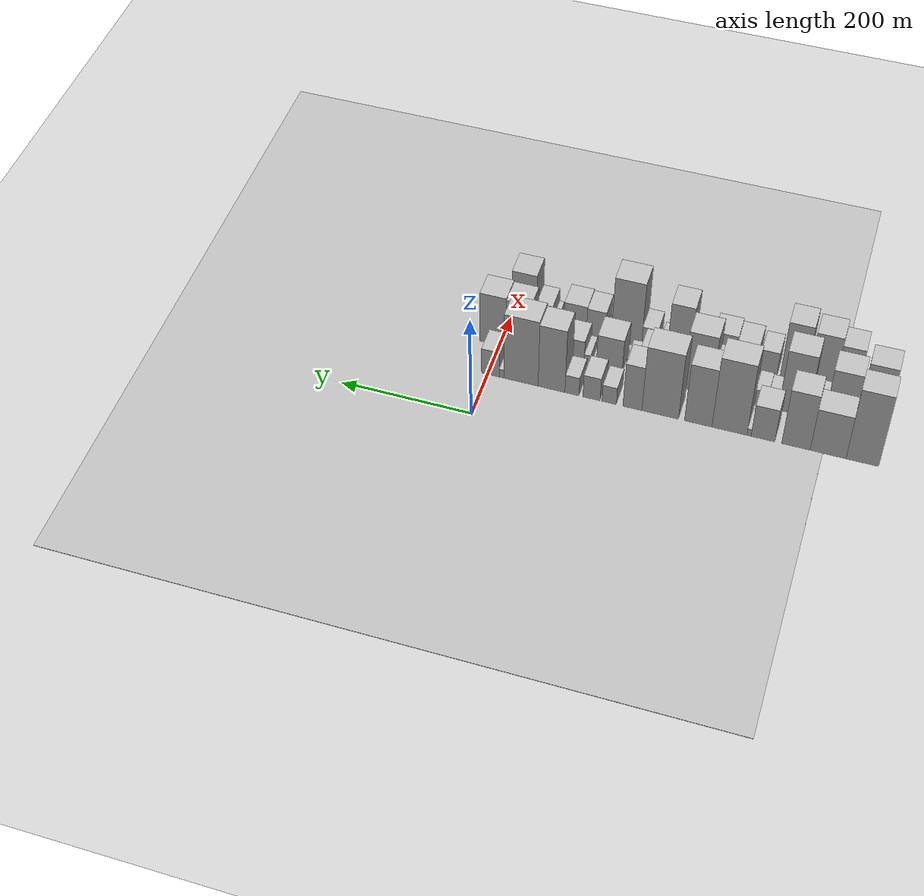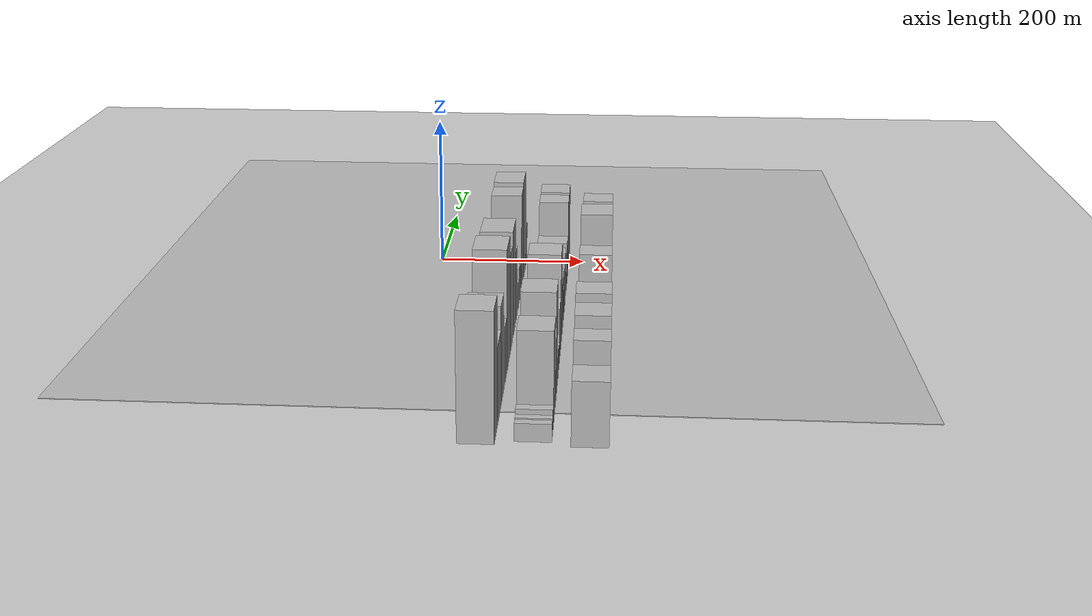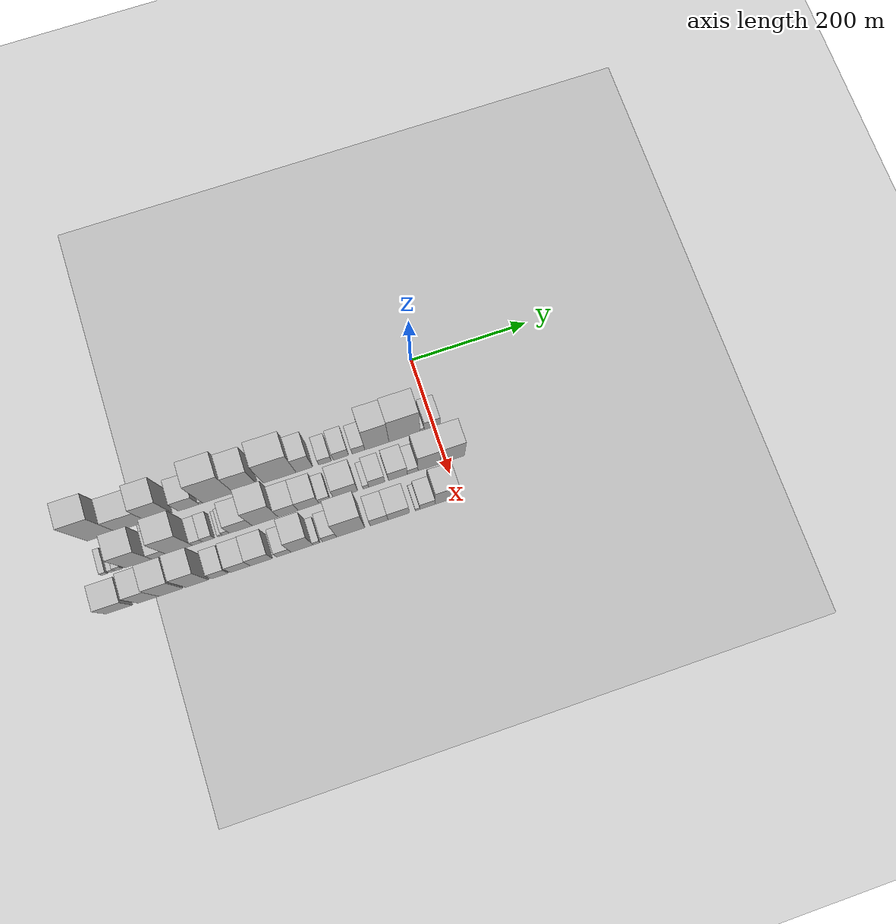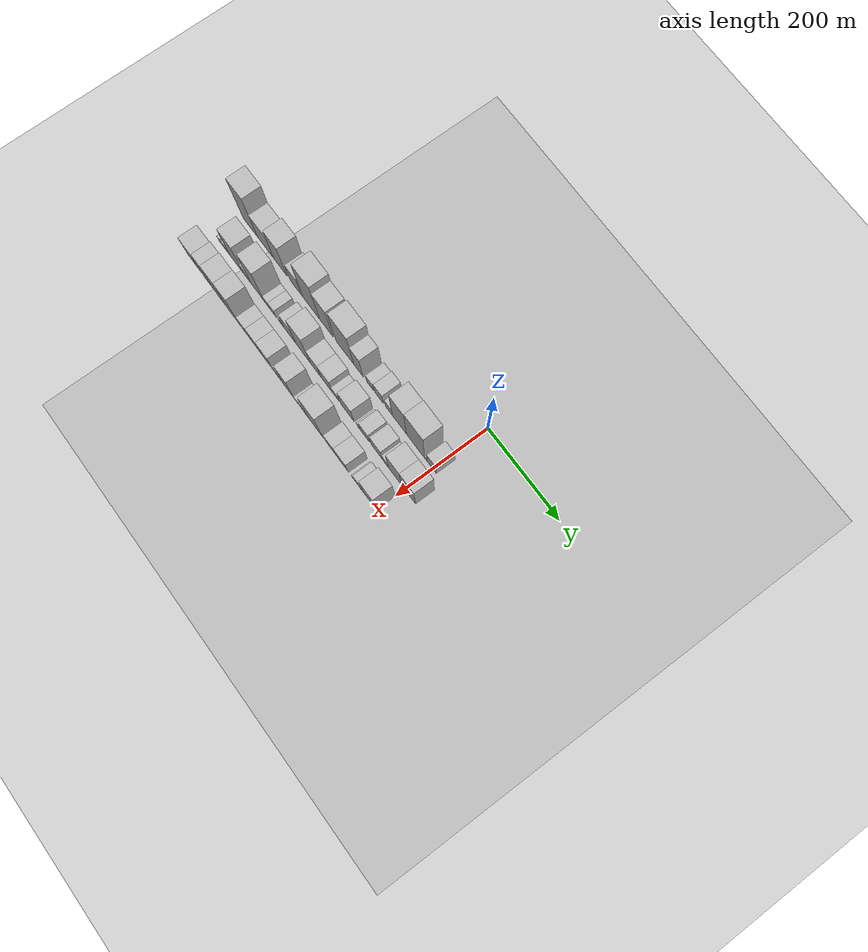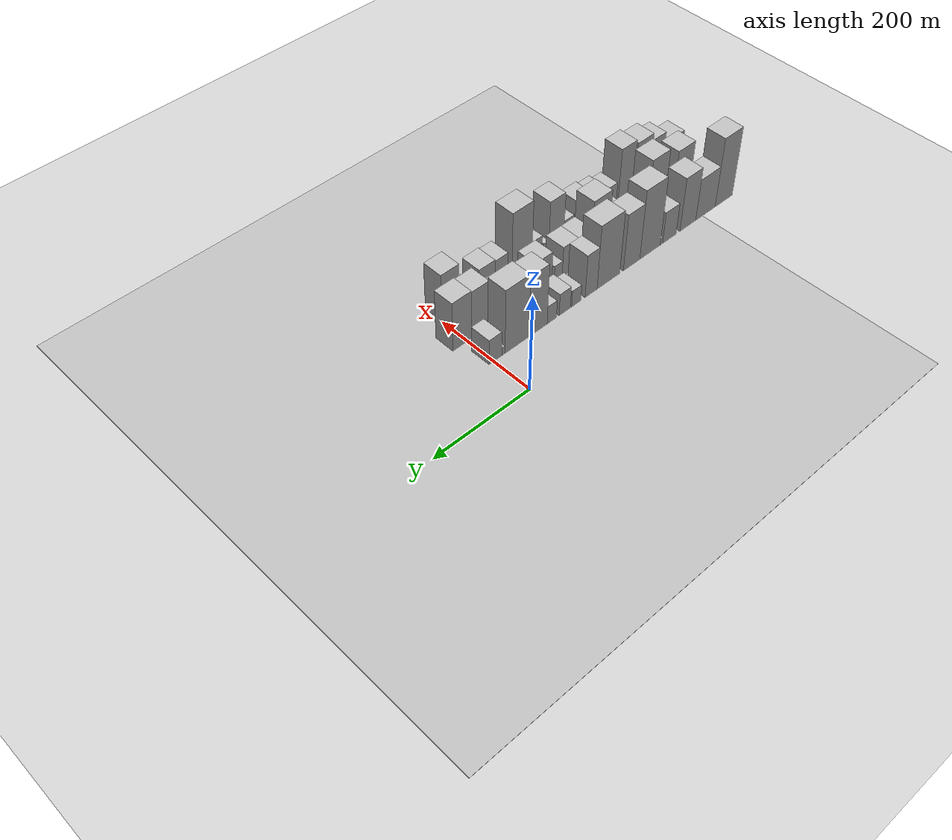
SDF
<sdf version="1.6">
 <world name="default">
  <include><name>ground_plane_1</name><uri>model://HANNAS_ground_plane</uri></include>
  <include>
   <name>ground_plane_2</name>
   <uri>model://HANNAS_ground_plane</uri>
   <pose>100 0 0  0 0 0</pose>
  </include>
  <model name="building_1">
   <static>1</static>
   <pose>100.0000 -556.6057 0 0.000000 0.000000 0.000000</pose>
   <link name="link">
    <pose>0 0 75.00 0 0 0</pose>
    <collision name="collision"><geometry><box><size>40.0000 46.7887 150.0000</size></box></geometry></collision>
    <visual name="visual">
     <cast_shadows>0</cast_shadows>
     <geometry><box><size>40.0000 46.7887 150.0000</size></box></geometry>
     <material>
      <script>
       <uri>model://HANNAS_wall/materials/scripts</uri>
       <uri>model://HANNAS_wall/materials/textures</uri>
       <name>vrc/HANNAS_wall</name>
      </script>
     </material>
    </visual>
   </link>
  </model>
  <model name="building_2">
   <static>1</static>
   <pose>100.0000 -507.5364 0 0.000000 0.000000 0.000000</pose>
   <link name="link">
    <pose>0 0 45.00 0 0 0</pose>
    <collision name="collision"><geometry><box><size>40.0000 51.3499 90.0000</size></box></geometry></collision>
    <visual name="visual">
     <cast_shadows>0</cast_shadows>
     <geometry><box><size>40.0000 51.3499 90.0000</size></box></geometry>
     <material>
      <script>
       <uri>model://HANNAS_wall/materials/scripts</uri>
       <uri>model://HANNAS_wall/materials/textures</uri>
       <name>vrc/HANNAS_wall</name>
      </script>
     </material>
    </visual>
   </link>
  </model>
  <model name="building_3">
   <static>1</static>
   <pose>100.0000 -461.2235 0 0.000000 0.000000 0.000000</pose>
   <link name="link">
    <pose>0 0 58.50 0 0 0</pose>
    <collision name="collision"><geometry><box><size>40.0000 41.2757 117.0000</size></box></geometry></collision>
    <visual name="visual">
     <cast_shadows>0</cast_shadows>
     <geometry><box><size>40.0000 41.2757 117.0000</size></box></geometry>
     <material>
      <script>
       <uri>model://HANNAS_wall/materials/scripts</uri>
       <uri>model://HANNAS_wall/materials/textures</uri>
       <name>vrc/HANNAS_wall</name>
      </script>
     </material>
    </visual>
   </link>
  </model>
  <model name="building_4">
   <static>1</static>
   <pose>100.0000 -413.2775 0 0.000000 0.000000 0.000000</pose>
   <link name="link">
    <pose>0 0 34.50 0 0 0</pose>
    <collision name="collision"><geometry><box><size>40.0000 34.6164 69.0000</size></box></geometry></collision>
    <visual name="visual">
     <cast_shadows>0</cast_shadows>
     <geometry><box><size>40.0000 34.6164 69.0000</size></box></geometry>
     <material>
      <script>
       <uri>model://HANNAS_wall/materials/scripts</uri>
       <uri>model://HANNAS_wall/materials/textures</uri>
       <name>vrc/HANNAS_wall</name>
      </script>
     </material>
    </visual>
   </link>
  </model>
  <model name="building_5">
   <static>1</static>
   <pose>100.0000 -392.9326 0 0.000000 0.000000 0.000000</pose>
   <link name="link">
    <pose>0 0 7.50 0 0 0</pose>
    <collision name="collision"><geometry><box><size>40.0000 6.0733 15.0000</size></box></geometry></collision>
    <visual name="visual">
     <cast_shadows>0</cast_shadows>
     <geometry><box><size>40.0000 6.0733 15.0000</size></box></geometry>
     <material>
      <script>
       <uri>model://HANNAS_wall/materials/scripts</uri>
       <uri>model://HANNAS_wall/materials/textures</uri>
       <name>vrc/HANNAS_wall</name>
      </script>
     </material>
    </visual>
   </link>
  </model>
  <model name="building_6">
   <static>1</static>
   <pose>100.0000 -364.1682 0 0.000000 0.000000 0.000000</pose>
   <link name="link">
    <pose>0 0 75.00 0 0 0</pose>
    <collision name="collision"><geometry><box><size>40.0000 51.4556 150.0000</size></box></geometry></collision>
    <visual name="visual">
     <cast_shadows>0</cast_shadows>
     <geometry><box><size>40.0000 51.4556 150.0000</size></box></geometry>
     <material>
      <script>
       <uri>model://HANNAS_wall/materials/scripts</uri>
       <uri>model://HANNAS_wall/materials/textures</uri>
       <name>vrc/HANNAS_wall</name>
      </script>
     </material>
    </visual>
   </link>
  </model>
  <model name="building_7">
   <static>1</static>
   <pose>100.0000 -318.2402 0 0.000000 0.000000 0.000000</pose>
   <link name="link">
    <pose>0 0 61.50 0 0 0</pose>
    <collision name="collision"><geometry><box><size>40.0000 40.4003 123.0000</size></box></geometry></collision>
    <visual name="visual">
     <cast_shadows>0</cast_shadows>
     <geometry><box><size>40.0000 40.4003 123.0000</size></box></geometry>
     <material>
      <script>
       <uri>model://HANNAS_wall/materials/scripts</uri>
       <uri>model://HANNAS_wall/materials/textures</uri>
       <name>vrc/HANNAS_wall</name>
      </script>
     </material>
    </visual>
   </link>
  </model>
  <model name="building_8">
   <static>1</static>
   <pose>100.0000 -261.7073 0 0.000000 0.000000 0.000000</pose>
   <link name="link">
    <pose>0 0 69.00 0 0 0</pose>
    <collision name="collision"><geometry><box><size>40.0000 54.6654 138.0000</size></box></geometry></collision>
    <visual name="visual">
     <cast_shadows>0</cast_shadows>
     <geometry><box><size>40.0000 54.6654 138.0000</size></box></geometry>
     <material>
      <script>
       <uri>model://HANNAS_wall/materials/scripts</uri>
       <uri>model://HANNAS_wall/materials/textures</uri>
       <name>vrc/HANNAS_wall</name>
      </script>
     </material>
    </visual>
   </link>
  </model>
  <model name="building_9">
   <static>1</static>
   <pose>100.0000 -220.2208 0 0.000000 0.000000 0.000000</pose>
   <link name="link">
    <pose>0 0 46.50 0 0 0</pose>
    <collision name="collision"><geometry><box><size>40.0000 28.3076 93.0000</size></box></geometry></collision>
    <visual name="visual">
     <cast_shadows>0</cast_shadows>
     <geometry><box><size>40.0000 28.3076 93.0000</size></box></geometry>
     <material>
      <script>
       <uri>model://HANNAS_wall/materials/scripts</uri>
       <uri>model://HANNAS_wall/materials/textures</uri>
       <name>vrc/HANNAS_wall</name>
      </script>
     </material>
    </visual>
   </link>
  </model>
  <model name="building_10">
   <static>1</static>
   <pose>100.0000 -185.3479 0 0.000000 0.000000 0.000000</pose>
   <link name="link">
    <pose>0 0 18.00 0 0 0</pose>
    <collision name="collision"><geometry><box><size>40.0000 21.4381 36.0000</size></box></geometry></collision>
    <visual name="visual">
     <cast_shadows>0</cast_shadows>
     <geometry><box><size>40.0000 21.4381 36.0000</size></box></geometry>
     <material>
      <script>
       <uri>model://HANNAS_wall/materials/scripts</uri>
       <uri>model://HANNAS_wall/materials/textures</uri>
       <name>vrc/HANNAS_wall</name>
      </script>
     </material>
    </visual>
   </link>
  </model>
  <model name="building_11">
   <static>1</static>
   <pose>100.0000 -158.6383 0 0.000000 0.000000 0.000000</pose>
   <link name="link">
    <pose>0 0 24.00 0 0 0</pose>
    <collision name="collision"><geometry><box><size>40.0000 25.9812 48.0000</size></box></geometry></collision>
    <visual name="visual">
     <cast_shadows>0</cast_shadows>
     <geometry><box><size>40.0000 25.9812 48.0000</size></box></geometry>
     <material>
      <script>
       <uri>model://HANNAS_wall/materials/scripts</uri>
       <uri>model://HANNAS_wall/materials/textures</uri>
       <name>vrc/HANNAS_wall</name>
      </script>
     </material>
    </visual>
   </link>
  </model>
  <model name="building_12">
   <static>1</static>
   <pose>100.0000 -128.9441 0 0.000000 0.000000 0.000000</pose>
   <link name="link">
    <pose>0 0 19.50 0 0 0</pose>
    <collision name="collision"><geometry><box><size>40.0000 21.4073 39.0000</size></box></geometry></collision>
    <visual name="visual">
     <cast_shadows>0</cast_shadows>
     <geometry><box><size>40.0000 21.4073 39.0000</size></box></geometry>
     <material>
      <script>
       <uri>model://HANNAS_wall/materials/scripts</uri>
       <uri>model://HANNAS_wall/materials/textures</uri>
       <name>vrc/HANNAS_wall</name>
      </script>
     </material>
    </visual>
   </link>
  </model>
  <model name="building_13">
   <static>1</static>
   <pose>100.0000 -97.7758 0 0.000000 0.000000 0.000000</pose>
   <link name="link">
    <pose>0 0 66.00 0 0 0</pose>
    <collision name="collision"><geometry><box><size>40.0000 40.9294 132.0000</size></box></geometry></collision>
    <visual name="visual">
     <cast_shadows>0</cast_shadows>
     <geometry><box><size>40.0000 40.9294 132.0000</size></box></geometry>
     <material>
      <script>
       <uri>model://HANNAS_wall/materials/scripts</uri>
       <uri>model://HANNAS_wall/materials/textures</uri>
       <name>vrc/HANNAS_wall</name>
      </script>
     </material>
    </visual>
   </link>
  </model>
  <model name="building_14">
   <static>1</static>
   <pose>100.0000 -50.9535 0 0.000000 0.000000 0.000000</pose>
   <link name="link">
    <pose>0 0 69.00 0 0 0</pose>
    <collision name="collision"><geometry><box><size>40.0000 52.7151 138.0000</size></box></geometry></collision>
    <visual name="visual">
     <cast_shadows>0</cast_shadows>
     <geometry><box><size>40.0000 52.7151 138.0000</size></box></geometry>
     <material>
      <script>
       <uri>model://HANNAS_wall/materials/scripts</uri>
       <uri>model://HANNAS_wall/materials/textures</uri>
       <name>vrc/HANNAS_wall</name>
      </script>
     </material>
    </visual>
   </link>
  </model>
  <model name="building_15">
   <static>1</static>
   <pose>100.0000 -20.9547 0 0.000000 0.000000 0.000000</pose>
   <link name="link">
    <pose>0 0 9.00 0 0 0</pose>
    <collision name="collision"><geometry><box><size>40.0000 7.2826 18.0000</size></box></geometry></collision>
    <visual name="visual">
     <cast_shadows>0</cast_shadows>
     <geometry><box><size>40.0000 7.2826 18.0000</size></box></geometry>
     <material>
      <script>
       <uri>model://HANNAS_wall/materials/scripts</uri>
       <uri>model://HANNAS_wall/materials/textures</uri>
       <name>vrc/HANNAS_wall</name>
      </script>
     </material>
    </visual>
   </link>
  </model>
  <model name="building_16">
   <static>1</static>
   <pose>100.0000 -3.7661 0 0.000000 0.000000 0.000000</pose>
   <link name="link">
    <pose>0 0 27.00 0 0 0</pose>
    <collision name="collision"><geometry><box><size>40.0000 27.0945 54.0000</size></box></geometry></collision>
    <visual name="visual">
     <cast_shadows>0</cast_shadows>
     <geometry><box><size>40.0000 27.0945 54.0000</size></box></geometry>
     <material>
      <script>
       <uri>model://HANNAS_wall/materials/scripts</uri>
       <uri>model://HANNAS_wall/materials/textures</uri>
       <name>vrc/HANNAS_wall</name>
      </script>
     </material>
    </visual>
   </link>
  </model>
  <model name="building_34">
   <static>1</static>
   <pose>160.0000 -565.9873 0 0.000000 0.000000 0.000000</pose>
   <link name="link">
    <pose>0 0 10.50 0 0 0</pose>
    <collision name="collision"><geometry><box><size>40.0000 10.0253 21.0000</size></box></geometry></collision>
    <visual name="visual">
     <cast_shadows>0</cast_shadows>
     <geometry><box><size>40.0000 10.0253 21.0000</size></box></geometry>
     <material>
      <script>
       <uri>model://HANNAS_wall/materials/scripts</uri>
       <uri>model://HANNAS_wall/materials/textures</uri>
       <name>vrc/HANNAS_wall</name>
      </script>
     </material>
    </visual>
   </link>
  </model>
  <model name="building_35">
   <static>1</static>
   <pose>160.0000 -553.3442 0 0.000000 0.000000 0.000000</pose>
   <link name="link">
    <pose>0 0 10.50 0 0 0</pose>
    <collision name="collision"><geometry><box><size>40.0000 9.2609 21.0000</size></box></geometry></collision>
    <visual name="visual">
     <cast_shadows>0</cast_shadows>
     <geometry><box><size>40.0000 9.2609 21.0000</size></box></geometry>
     <material>
      <script>
       <uri>model://HANNAS_wall/materials/scripts</uri>
       <uri>model://HANNAS_wall/materials/textures</uri>
       <name>vrc/HANNAS_wall</name>
      </script>
     </material>
    </visual>
   </link>
  </model>
  <model name="building_36">
   <static>1</static>
   <pose>160.0000 -542.7825 0 0.000000 0.000000 0.000000</pose>
   <link name="link">
    <pose>0 0 13.50 0 0 0</pose>
    <collision name="collision"><geometry><box><size>40.0000 11.8624 27.0000</size></box></geometry></collision>
    <visual name="visual">
     <cast_shadows>0</cast_shadows>
     <geometry><box><size>40.0000 11.8624 27.0000</size></box></geometry>
     <material>
      <script>
       <uri>model://HANNAS_wall/materials/scripts</uri>
       <uri>model://HANNAS_wall/materials/textures</uri>
       <name>vrc/HANNAS_wall</name>
      </script>
     </material>
    </visual>
   </link>
  </model>
  <model name="building_37">
   <static>1</static>
   <pose>160.0000 -512.3643 0 0.000000 0.000000 0.000000</pose>
   <link name="link">
    <pose>0 0 55.50 0 0 0</pose>
    <collision name="collision"><geometry><box><size>40.0000 42.9741 111.0000</size></box></geometry></collision>
    <visual name="visual">
     <cast_shadows>0</cast_shadows>
     <geometry><box><size>40.0000 42.9741 111.0000</size></box></geometry>
     <material>
      <script>
       <uri>model://HANNAS_wall/materials/scripts</uri>
       <uri>model://HANNAS_wall/materials/textures</uri>
       <name>vrc/HANNAS_wall</name>
      </script>
     </material>
    </visual>
   </link>
  </model>
  <model name="building_38">
   <static>1</static>
   <pose>160.0000 -478.8510 0 0.000000 0.000000 0.000000</pose>
   <link name="link">
    <pose>0 0 21.00 0 0 0</pose>
    <collision name="collision"><geometry><box><size>40.0000 24.0523 42.0000</size></box></geometry></collision>
    <visual name="visual">
     <cast_shadows>0</cast_shadows>
     <geometry><box><size>40.0000 24.0523 42.0000</size></box></geometry>
     <material>
      <script>
       <uri>model://HANNAS_wall/materials/scripts</uri>
       <uri>model://HANNAS_wall/materials/textures</uri>
       <name>vrc/HANNAS_wall</name>
      </script>
     </material>
    </visual>
   </link>
  </model>
  <model name="building_39">
   <static>1</static>
   <pose>160.0000 -445.1828 0 0.000000 0.000000 0.000000</pose>
   <link name="link">
    <pose>0 0 64.50 0 0 0</pose>
    <collision name="collision"><geometry><box><size>40.0000 43.2841 129.0000</size></box></geometry></collision>
    <visual name="visual">
     <cast_shadows>0</cast_shadows>
     <geometry><box><size>40.0000 43.2841 129.0000</size></box></geometry>
     <material>
      <script>
       <uri>model://HANNAS_wall/materials/scripts</uri>
       <uri>model://HANNAS_wall/materials/textures</uri>
       <name>vrc/HANNAS_wall</name>
      </script>
     </material>
    </visual>
   </link>
  </model>
  <model name="building_40">
   <static>1</static>
   <pose>160.0000 -415.0381 0 0.000000 0.000000 0.000000</pose>
   <link name="link">
    <pose>0 0 15.00 0 0 0</pose>
    <collision name="collision"><geometry><box><size>40.0000 17.0053 30.0000</size></box></geometry></collision>
    <visual name="visual">
     <cast_shadows>0</cast_shadows>
     <geometry><box><size>40.0000 17.0053 30.0000</size></box></geometry>
     <material>
      <script>
       <uri>model://HANNAS_wall/materials/scripts</uri>
       <uri>model://HANNAS_wall/materials/textures</uri>
       <name>vrc/HANNAS_wall</name>
      </script>
     </material>
    </visual>
   </link>
  </model>
  <model name="building_41">
   <static>1</static>
   <pose>160.0000 -396.8979 0 0.000000 0.000000 0.000000</pose>
   <link name="link">
    <pose>0 0 16.50 0 0 0</pose>
    <collision name="collision"><geometry><box><size>40.0000 19.2752 33.0000</size></box></geometry></collision>
    <visual name="visual">
     <cast_shadows>0</cast_shadows>
     <geometry><box><size>40.0000 19.2752 33.0000</size></box></geometry>
     <material>
      <script>
       <uri>model://HANNAS_wall/materials/scripts</uri>
       <uri>model://HANNAS_wall/materials/textures</uri>
       <name>vrc/HANNAS_wall</name>
      </script>
     </material>
    </visual>
   </link>
  </model>
  <model name="building_42">
   <static>1</static>
   <pose>160.0000 -377.6748 0 0.000000 0.000000 0.000000</pose>
   <link name="link">
    <pose>0 0 7.50 0 0 0</pose>
    <collision name="collision"><geometry><box><size>40.0000 7.1710 15.0000</size></box></geometry></collision>
    <visual name="visual">
     <cast_shadows>0</cast_shadows>
     <geometry><box><size>40.0000 7.1710 15.0000</size></box></geometry>
     <material>
      <script>
       <uri>model://HANNAS_wall/materials/scripts</uri>
       <uri>model://HANNAS_wall/materials/textures</uri>
       <name>vrc/HANNAS_wall</name>
      </script>
     </material>
    </visual>
   </link>
  </model>
  <model name="building_43">
   <static>1</static>
   <pose>160.0000 -368.3267 0 0.000000 0.000000 0.000000</pose>
   <link name="link">
    <pose>0 0 13.50 0 0 0</pose>
    <collision name="collision"><geometry><box><size>40.0000 11.5252 27.0000</size></box></geometry></collision>
    <visual name="visual">
     <cast_shadows>0</cast_shadows>
     <geometry><box><size>40.0000 11.5252 27.0000</size></box></geometry>
     <material>
      <script>
       <uri>model://HANNAS_wall/materials/scripts</uri>
       <uri>model://HANNAS_wall/materials/textures</uri>
       <name>vrc/HANNAS_wall</name>
      </script>
     </material>
    </visual>
   </link>
  </model>
  <model name="building_44">
   <static>1</static>
   <pose>160.0000 -343.9430 0 0.000000 0.000000 0.000000</pose>
   <link name="link">
    <pose>0 0 34.50 0 0 0</pose>
    <collision name="collision"><geometry><box><size>40.0000 37.2422 69.0000</size></box></geometry></collision>
    <visual name="visual">
     <cast_shadows>0</cast_shadows>
     <geometry><box><size>40.0000 37.2422 69.0000</size></box></geometry>
     <material>
      <script>
       <uri>model://HANNAS_wall/materials/scripts</uri>
       <uri>model://HANNAS_wall/materials/textures</uri>
       <name>vrc/HANNAS_wall</name>
      </script>
     </material>
    </visual>
   </link>
  </model>
  <model name="building_45">
   <static>1</static>
   <pose>160.0000 -303.7609 0 0.000000 0.000000 0.000000</pose>
   <link name="link">
    <pose>0 0 61.50 0 0 0</pose>
    <collision name="collision"><geometry><box><size>40.0000 43.1222 123.0000</size></box></geometry></collision>
    <visual name="visual">
     <cast_shadows>0</cast_shadows>
     <geometry><box><size>40.0000 43.1222 123.0000</size></box></geometry>
     <material>
      <script>
       <uri>model://HANNAS_wall/materials/scripts</uri>
       <uri>model://HANNAS_wall/materials/textures</uri>
       <name>vrc/HANNAS_wall</name>
      </script>
     </material>
    </visual>
   </link>
  </model>
  <model name="building_46">
   <static>1</static>
   <pose>160.0000 -265.6744 0 0.000000 0.000000 0.000000</pose>
   <link name="link">
    <pose>0 0 33.00 0 0 0</pose>
    <collision name="collision"><geometry><box><size>40.0000 33.0507 66.0000</size></box></geometry></collision>
    <visual name="visual">
     <cast_shadows>0</cast_shadows>
     <geometry><box><size>40.0000 33.0507 66.0000</size></box></geometry>
     <material>
      <script>
       <uri>model://HANNAS_wall/materials/scripts</uri>
       <uri>model://HANNAS_wall/materials/textures</uri>
       <name>vrc/HANNAS_wall</name>
      </script>
     </material>
    </visual>
   </link>
  </model>
  <model name="building_47">
   <static>1</static>
   <pose>160.0000 -231.5568 0 0.000000 0.000000 0.000000</pose>
   <link name="link">
    <pose>0 0 33.00 0 0 0</pose>
    <collision name="collision"><geometry><box><size>40.0000 35.1845 66.0000</size></box></geometry></collision>
    <visual name="visual">
     <cast_shadows>0</cast_shadows>
     <geometry><box><size>40.0000 35.1845 66.0000</size></box></geometry>
     <material>
      <script>
       <uri>model://HANNAS_wall/materials/scripts</uri>
       <uri>model://HANNAS_wall/materials/textures</uri>
       <name>vrc/HANNAS_wall</name>
      </script>
     </material>
    </visual>
   </link>
  </model>
  <model name="building_48">
   <static>1</static>
   <pose>160.0000 -204.5643 0 0.000000 0.000000 0.000000</pose>
   <link name="link">
    <pose>0 0 18.00 0 0 0</pose>
    <collision name="collision"><geometry><box><size>40.0000 18.8004 36.0000</size></box></geometry></collision>
    <visual name="visual">
     <cast_shadows>0</cast_shadows>
     <geometry><box><size>40.0000 18.8004 36.0000</size></box></geometry>
     <material>
      <script>
       <uri>model://HANNAS_wall/materials/scripts</uri>
       <uri>model://HANNAS_wall/materials/textures</uri>
       <name>vrc/HANNAS_wall</name>
      </script>
     </material>
    </visual>
   </link>
  </model>
  <model name="building_49">
   <static>1</static>
   <pose>160.0000 -169.2522 0 0.000000 0.000000 0.000000</pose>
   <link name="link">
    <pose>0 0 36.00 0 0 0</pose>
    <collision name="collision"><geometry><box><size>40.0000 39.8238 72.0000</size></box></geometry></collision>
    <visual name="visual">
     <cast_shadows>0</cast_shadows>
     <geometry><box><size>40.0000 39.8238 72.0000</size></box></geometry>
     <material>
      <script>
       <uri>model://HANNAS_wall/materials/scripts</uri>
       <uri>model://HANNAS_wall/materials/textures</uri>
       <name>vrc/HANNAS_wall</name>
      </script>
     </material>
    </visual>
   </link>
  </model>
  <model name="building_50">
   <static>1</static>
   <pose>160.0000 -135.4877 0 0.000000 0.000000 0.000000</pose>
   <link name="link">
    <pose>0 0 12.00 0 0 0</pose>
    <collision name="collision"><geometry><box><size>40.0000 9.7053 24.0000</size></box></geometry></collision>
    <visual name="visual">
     <cast_shadows>0</cast_shadows>
     <geometry><box><size>40.0000 9.7053 24.0000</size></box></geometry>
     <material>
      <script>
       <uri>model://HANNAS_wall/materials/scripts</uri>
       <uri>model://HANNAS_wall/materials/textures</uri>
       <name>vrc/HANNAS_wall</name>
      </script>
     </material>
    </visual>
   </link>
  </model>
  <model name="building_51">
   <static>1</static>
   <pose>160.0000 -117.0785 0 0.000000 0.000000 0.000000</pose>
   <link name="link">
    <pose>0 0 25.50 0 0 0</pose>
    <collision name="collision"><geometry><box><size>40.0000 27.1130 51.0000</size></box></geometry></collision>
    <visual name="visual">
     <cast_shadows>0</cast_shadows>
     <geometry><box><size>40.0000 27.1130 51.0000</size></box></geometry>
     <material>
      <script>
       <uri>model://HANNAS_wall/materials/scripts</uri>
       <uri>model://HANNAS_wall/materials/textures</uri>
       <name>vrc/HANNAS_wall</name>
      </script>
     </material>
    </visual>
   </link>
  </model>
  <model name="building_52">
   <static>1</static>
   <pose>160.0000 -81.5995 0 0.000000 0.000000 0.000000</pose>
   <link name="link">
    <pose>0 0 30.00 0 0 0</pose>
    <collision name="collision"><geometry><box><size>40.0000 31.8449 60.0000</size></box></geometry></collision>
    <visual name="visual">
     <cast_shadows>0</cast_shadows>
     <geometry><box><size>40.0000 31.8449 60.0000</size></box></geometry>
     <material>
      <script>
       <uri>model://HANNAS_wall/materials/scripts</uri>
       <uri>model://HANNAS_wall/materials/textures</uri>
       <name>vrc/HANNAS_wall</name>
      </script>
     </material>
    </visual>
   </link>
  </model>
  <model name="building_53">
   <static>1</static>
   <pose>160.0000 -56.6211 0 0.000000 0.000000 0.000000</pose>
   <link name="link">
    <pose>0 0 16.50 0 0 0</pose>
    <collision name="collision"><geometry><box><size>40.0000 18.1120 33.0000</size></box></geometry></collision>
    <visual name="visual">
     <cast_shadows>0</cast_shadows>
     <geometry><box><size>40.0000 18.1120 33.0000</size></box></geometry>
     <material>
      <script>
       <uri>model://HANNAS_wall/materials/scripts</uri>
       <uri>model://HANNAS_wall/materials/textures</uri>
       <name>vrc/HANNAS_wall</name>
      </script>
     </material>
    </visual>
   </link>
  </model>
  <model name="building_54">
   <static>1</static>
   <pose>160.0000 -28.6241 0 0.000000 0.000000 0.000000</pose>
   <link name="link">
    <pose>0 0 51.00 0 0 0</pose>
    <collision name="collision"><geometry><box><size>40.0000 37.8820 102.0000</size></box></geometry></collision>
    <visual name="visual">
     <cast_shadows>0</cast_shadows>
     <geometry><box><size>40.0000 37.8820 102.0000</size></box></geometry>
     <material>
      <script>
       <uri>model://HANNAS_wall/materials/scripts</uri>
       <uri>model://HANNAS_wall/materials/textures</uri>
       <name>vrc/HANNAS_wall</name>
      </script>
     </material>
    </visual>
   </link>
  </model>
  <model name="building_55">
   <static>1</static>
   <pose>160.0000 10.7575 0 0.000000 0.000000 0.000000</pose>
   <link name="link">
    <pose>0 0 52.50 0 0 0</pose>
    <collision name="collision"><geometry><box><size>40.0000 40.8811 105.0000</size></box></geometry></collision>
    <visual name="visual">
     <cast_shadows>0</cast_shadows>
     <geometry><box><size>40.0000 40.8811 105.0000</size></box></geometry>
     <material>
      <script>
       <uri>model://HANNAS_wall/materials/scripts</uri>
       <uri>model://HANNAS_wall/materials/textures</uri>
       <name>vrc/HANNAS_wall</name>
      </script>
     </material>
    </visual>
   </link>
  </model>
  <model name="building_73">
   <static>1</static>
   <pose>220.0000 -558.6510 0 0.000000 0.000000 0.000000</pose>
   <link name="link">
    <pose>0 0 37.50 0 0 0</pose>
    <collision name="collision"><geometry><box><size>40.0000 42.6980 75.0000</size></box></geometry></collision>
    <visual name="visual">
     <cast_shadows>0</cast_shadows>
     <geometry><box><size>40.0000 42.6980 75.0000</size></box></geometry>
     <material>
      <script>
       <uri>model://HANNAS_wall/materials/scripts</uri>
       <uri>model://HANNAS_wall/materials/textures</uri>
       <name>vrc/HANNAS_wall</name>
      </script>
     </material>
    </visual>
   </link>
  </model>
  <model name="building_74">
   <static>1</static>
   <pose>220.0000 -511.4858 0 0.000000 0.000000 0.000000</pose>
   <link name="link">
    <pose>0 0 49.50 0 0 0</pose>
    <collision name="collision"><geometry><box><size>40.0000 33.6324 99.0000</size></box></geometry></collision>
    <visual name="visual">
     <cast_shadows>0</cast_shadows>
     <geometry><box><size>40.0000 33.6324 99.0000</size></box></geometry>
     <material>
      <script>
       <uri>model://HANNAS_wall/materials/scripts</uri>
       <uri>model://HANNAS_wall/materials/textures</uri>
       <name>vrc/HANNAS_wall</name>
      </script>
     </material>
    </visual>
   </link>
  </model>
  <model name="building_75">
   <static>1</static>
   <pose>220.0000 -474.9316 0 0.000000 0.000000 0.000000</pose>
   <link name="link">
    <pose>0 0 57.00 0 0 0</pose>
    <collision name="collision"><geometry><box><size>40.0000 39.4760 114.0000</size></box></geometry></collision>
    <visual name="visual">
     <cast_shadows>0</cast_shadows>
     <geometry><box><size>40.0000 39.4760 114.0000</size></box></geometry>
     <material>
      <script>
       <uri>model://HANNAS_wall/materials/scripts</uri>
       <uri>model://HANNAS_wall/materials/textures</uri>
       <name>vrc/HANNAS_wall</name>
      </script>
     </material>
    </visual>
   </link>
  </model>
  <model name="building_76">
   <static>1</static>
   <pose>220.0000 -432.4911 0 0.000000 0.000000 0.000000</pose>
   <link name="link">
    <pose>0 0 61.50 0 0 0</pose>
    <collision name="collision"><geometry><box><size>40.0000 37.4050 123.0000</size></box></geometry></collision>
    <visual name="visual">
     <cast_shadows>0</cast_shadows>
     <geometry><box><size>40.0000 37.4050 123.0000</size></box></geometry>
     <material>
      <script>
       <uri>model://HANNAS_wall/materials/scripts</uri>
       <uri>model://HANNAS_wall/materials/textures</uri>
       <name>vrc/HANNAS_wall</name>
      </script>
     </material>
    </visual>
   </link>
  </model>
  <model name="building_77">
   <static>1</static>
   <pose>220.0000 -395.1412 0 0.000000 0.000000 0.000000</pose>
   <link name="link">
    <pose>0 0 27.00 0 0 0</pose>
    <collision name="collision"><geometry><box><size>40.0000 27.2949 54.0000</size></box></geometry></collision>
    <visual name="visual">
     <cast_shadows>0</cast_shadows>
     <geometry><box><size>40.0000 27.2949 54.0000</size></box></geometry>
     <material>
      <script>
       <uri>model://HANNAS_wall/materials/scripts</uri>
       <uri>model://HANNAS_wall/materials/textures</uri>
       <name>vrc/HANNAS_wall</name>
      </script>
     </material>
    </visual>
   </link>
  </model>
  <model name="building_78">
   <static>1</static>
   <pose>220.0000 -362.0749 0 0.000000 0.000000 0.000000</pose>
   <link name="link">
    <pose>0 0 31.50 0 0 0</pose>
    <collision name="collision"><geometry><box><size>40.0000 32.8376 63.0000</size></box></geometry></collision>
    <visual name="visual">
     <cast_shadows>0</cast_shadows>
     <geometry><box><size>40.0000 32.8376 63.0000</size></box></geometry>
     <material>
      <script>
       <uri>model://HANNAS_wall/materials/scripts</uri>
       <uri>model://HANNAS_wall/materials/textures</uri>
       <name>vrc/HANNAS_wall</name>
      </script>
     </material>
    </visual>
   </link>
  </model>
  <model name="building_79">
   <static>1</static>
   <pose>220.0000 -327.5263 0 0.000000 0.000000 0.000000</pose>
   <link name="link">
    <pose>0 0 34.50 0 0 0</pose>
    <collision name="collision"><geometry><box><size>40.0000 36.2596 69.0000</size></box></geometry></collision>
    <visual name="visual">
     <cast_shadows>0</cast_shadows>
     <geometry><box><size>40.0000 36.2596 69.0000</size></box></geometry>
     <material>
      <script>
       <uri>model://HANNAS_wall/materials/scripts</uri>
       <uri>model://HANNAS_wall/materials/textures</uri>
       <name>vrc/HANNAS_wall</name>
      </script>
     </material>
    </visual>
   </link>
  </model>
  <model name="building_80">
   <static>1</static>
   <pose>220.0000 -290.5452 0 0.000000 0.000000 0.000000</pose>
   <link name="link">
    <pose>0 0 22.50 0 0 0</pose>
    <collision name="collision"><geometry><box><size>40.0000 23.7028 45.0000</size></box></geometry></collision>
    <visual name="visual">
     <cast_shadows>0</cast_shadows>
     <geometry><box><size>40.0000 23.7028 45.0000</size></box></geometry>
     <material>
      <script>
       <uri>model://HANNAS_wall/materials/scripts</uri>
       <uri>model://HANNAS_wall/materials/textures</uri>
       <name>vrc/HANNAS_wall</name>
      </script>
     </material>
    </visual>
   </link>
  </model>
  <model name="building_81">
   <static>1</static>
   <pose>220.0000 -260.6700 0 0.000000 0.000000 0.000000</pose>
   <link name="link">
    <pose>0 0 54.00 0 0 0</pose>
    <collision name="collision"><geometry><box><size>40.0000 36.0476 108.0000</size></box></geometry></collision>
    <visual name="visual">
     <cast_shadows>0</cast_shadows>
     <geometry><box><size>40.0000 36.0476 108.0000</size></box></geometry>
     <material>
      <script>
       <uri>model://HANNAS_wall/materials/scripts</uri>
       <uri>model://HANNAS_wall/materials/textures</uri>
       <name>vrc/HANNAS_wall</name>
      </script>
     </material>
    </visual>
   </link>
  </model>
  <model name="building_82">
   <static>1</static>
   <pose>220.0000 -236.8047 0 0.000000 0.000000 0.000000</pose>
   <link name="link">
    <pose>0 0 12.00 0 0 0</pose>
    <collision name="collision"><geometry><box><size>40.0000 11.6829 24.0000</size></box></geometry></collision>
    <visual name="visual">
     <cast_shadows>0</cast_shadows>
     <geometry><box><size>40.0000 11.6829 24.0000</size></box></geometry>
     <material>
      <script>
       <uri>model://HANNAS_wall/materials/scripts</uri>
       <uri>model://HANNAS_wall/materials/textures</uri>
       <name>vrc/HANNAS_wall</name>
      </script>
     </material>
    </visual>
   </link>
  </model>
  <model name="building_83">
   <static>1</static>
   <pose>220.0000 -215.0980 0 0.000000 0.000000 0.000000</pose>
   <link name="link">
    <pose>0 0 22.50 0 0 0</pose>
    <collision name="collision"><geometry><box><size>40.0000 23.7305 45.0000</size></box></geometry></collision>
    <visual name="visual">
     <cast_shadows>0</cast_shadows>
     <geometry><box><size>40.0000 23.7305 45.0000</size></box></geometry>
     <material>
      <script>
       <uri>model://HANNAS_wall/materials/scripts</uri>
       <uri>model://HANNAS_wall/materials/textures</uri>
       <name>vrc/HANNAS_wall</name>
      </script>
     </material>
    </visual>
   </link>
  </model>
  <model name="building_84">
   <static>1</static>
   <pose>220.0000 -179.7923 0 0.000000 0.000000 0.000000</pose>
   <link name="link">
    <pose>0 0 67.50 0 0 0</pose>
    <collision name="collision"><geometry><box><size>40.0000 46.8808 135.0000</size></box></geometry></collision>
    <visual name="visual">
     <cast_shadows>0</cast_shadows>
     <geometry><box><size>40.0000 46.8808 135.0000</size></box></geometry>
     <material>
      <script>
       <uri>model://HANNAS_wall/materials/scripts</uri>
       <uri>model://HANNAS_wall/materials/textures</uri>
       <name>vrc/HANNAS_wall</name>
      </script>
     </material>
    </visual>
   </link>
  </model>
  <model name="building_85">
   <static>1</static>
   <pose>220.0000 -132.6082 0 0.000000 0.000000 0.000000</pose>
   <link name="link">
    <pose>0 0 28.50 0 0 0</pose>
    <collision name="collision"><geometry><box><size>40.0000 29.4876 57.0000</size></box></geometry></collision>
    <visual name="visual">
     <cast_shadows>0</cast_shadows>
     <geometry><box><size>40.0000 29.4876 57.0000</size></box></geometry>
     <material>
      <script>
       <uri>model://HANNAS_wall/materials/scripts</uri>
       <uri>model://HANNAS_wall/materials/textures</uri>
       <name>vrc/HANNAS_wall</name>
      </script>
     </material>
    </visual>
   </link>
  </model>
  <model name="building_86">
   <static>1</static>
   <pose>220.0000 -100.0007 0 0.000000 0.000000 0.000000</pose>
   <link name="link">
    <pose>0 0 30.00 0 0 0</pose>
    <collision name="collision"><geometry><box><size>40.0000 35.7273 60.0000</size></box></geometry></collision>
    <visual name="visual">
     <cast_shadows>0</cast_shadows>
     <geometry><box><size>40.0000 35.7273 60.0000</size></box></geometry>
     <material>
      <script>
       <uri>model://HANNAS_wall/materials/scripts</uri>
       <uri>model://HANNAS_wall/materials/textures</uri>
       <name>vrc/HANNAS_wall</name>
      </script>
     </material>
    </visual>
   </link>
  </model>
  <model name="building_87">
   <static>1</static>
   <pose>220.0000 -68.3567 0 0.000000 0.000000 0.000000</pose>
   <link name="link">
    <pose>0 0 9.00 0 0 0</pose>
    <collision name="collision"><geometry><box><size>40.0000 7.5608 18.0000</size></box></geometry></collision>
    <visual name="visual">
     <cast_shadows>0</cast_shadows>
     <geometry><box><size>40.0000 7.5608 18.0000</size></box></geometry>
     <material>
      <script>
       <uri>model://HANNAS_wall/materials/scripts</uri>
       <uri>model://HANNAS_wall/materials/textures</uri>
       <name>vrc/HANNAS_wall</name>
      </script>
     </material>
    </visual>
   </link>
  </model>
  <model name="building_88">
   <static>1</static>
   <pose>220.0000 -51.7179 0 0.000000 0.000000 0.000000</pose>
   <link name="link">
    <pose>0 0 22.50 0 0 0</pose>
    <collision name="collision"><geometry><box><size>40.0000 25.7167 45.0000</size></box></geometry></collision>
    <visual name="visual">
     <cast_shadows>0</cast_shadows>
     <geometry><box><size>40.0000 25.7167 45.0000</size></box></geometry>
     <material>
      <script>
       <uri>model://HANNAS_wall/materials/scripts</uri>
       <uri>model://HANNAS_wall/materials/textures</uri>
       <name>vrc/HANNAS_wall</name>
      </script>
     </material>
    </visual>
   </link>
  </model>
  <model name="building_89">
   <static>1</static>
   <pose>220.0000 -19.5247 0 0.000000 0.000000 0.000000</pose>
   <link name="link">
    <pose>0 0 51.00 0 0 0</pose>
    <collision name="collision"><geometry><box><size>40.0000 38.6699 102.0000</size></box></geometry></collision>
    <visual name="visual">
     <cast_shadows>0</cast_shadows>
     <geometry><box><size>40.0000 38.6699 102.0000</size></box></geometry>
     <material>
      <script>
       <uri>model://HANNAS_wall/materials/scripts</uri>
       <uri>model://HANNAS_wall/materials/textures</uri>
       <name>vrc/HANNAS_wall</name>
      </script>
     </material>
    </visual>
   </link>
  </model>
 </world>
</sdf>
